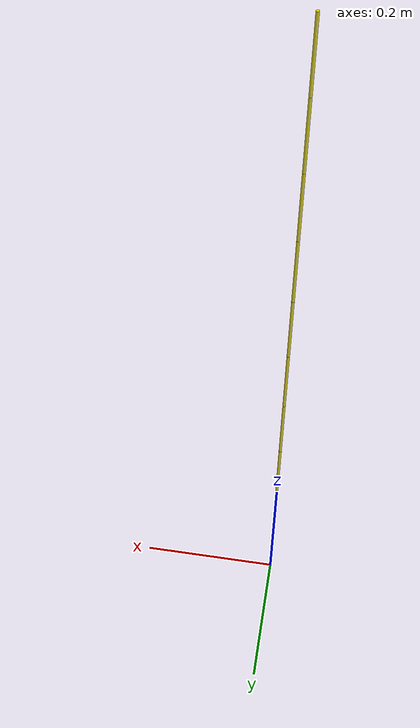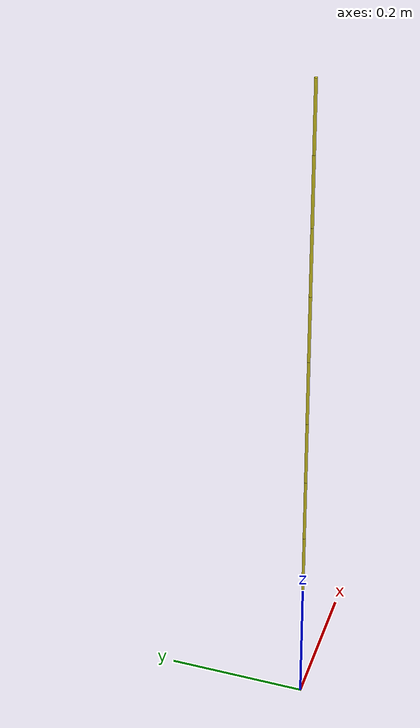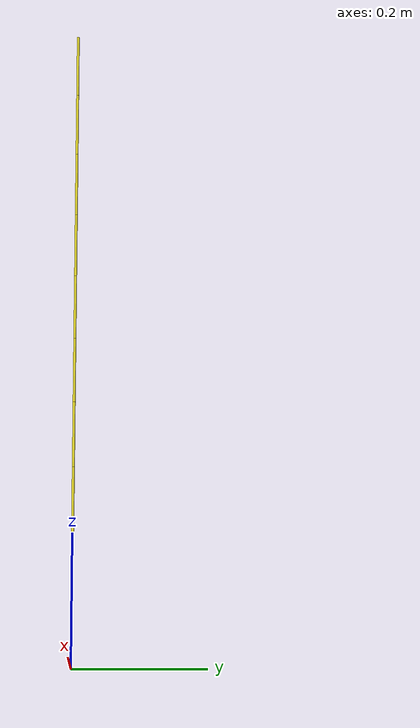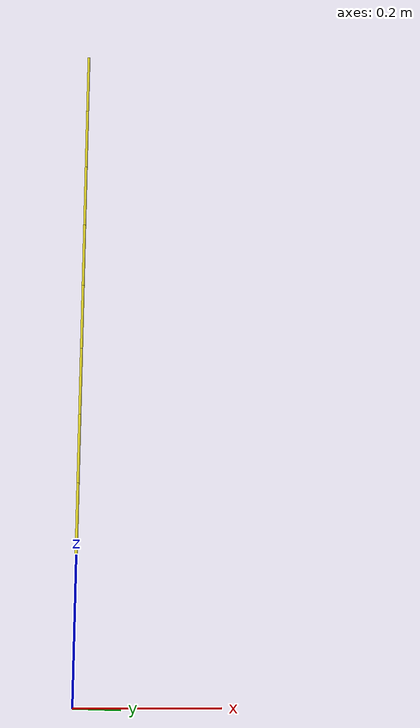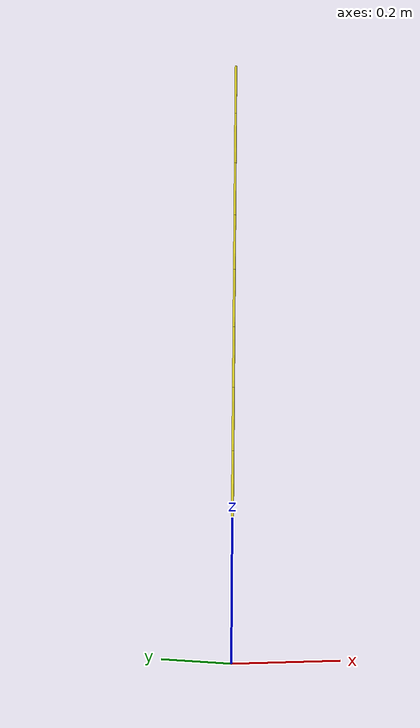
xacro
<?xml version="1.0"?>
<robot name="flexible_cable"
    xmlns:xacro="http://www.ros.org/wiki/xacro">

    <xacro:property name="N" value="10"/>
    <xacro:property name="length" value="1" />
    <xacro:property name="mass" value="0.01" />
    <xacro:property name="seg_length" value="${length/N}" />
    <xacro:property name="seg_mass" value="${mass/N}" />
    <xacro:property name="cable_radius" value="0.002" />
    <xacro:property name="color" value="Yellow"/>

    <!-- MACRO: dummy link to create 3D rotation (in Euler Angles) -->
    <xacro:macro name="dummy_link" params="name">
        <link name="${name}">
            <gravity>0</gravity>
            <inertial>
                <origin rpy="0 0 0" xyz="0 0 0"/>
                <mass value="0.00001"/>
                <inertia ixx="0.000000001" ixy="0" ixz="0" iyy="0.000000001" iyz="0" izz="0.000000001"/>
            </inertial>
            <visual>
                <geometry>
                    <sphere radius="0.00001"/>
                </geometry>
            </visual>
        </link>
        <gazebo reference="${name}">
            <material>Gazebo/Black</material>
        </gazebo>
    </xacro:macro>
    <!-- MACRO: create a rotational joint ( TODO: debug this joint) -->
    <xacro:macro name="rotational_joint" params="parent child jx jy jz">
        <xacro:dummy_link name="${parent}_${child}_dummylink1"/>
        <xacro:dummy_link name="${parent}_${child}_dummylink2"/>
        <joint name="${parent}_${child}_roll" type="continuous">
            <parent link="${parent}"/>
            <child link="${parent}_${child}_dummylink1"/>
            <axis xyz="1 0 0"/>
            <joint_properties damping="0.0" friction="0.0" />
            <origin xyz="${jx} ${jy} ${jz}"/>
        </joint>
        <joint name="${parent}_${child}_pitch" type="continuous">
            <parent link="${parent}_${child}_dummylink1"/>
            <child link="${parent}_${child}_dummylink2"/>
            <axis xyz="0 1 0"/>
            <joint_properties damping="0.0" friction="0.0" />
            <origin xyz="0 0 0"/>
        </joint>
        <joint name="${parent}_${child}_yaw" type="continuous">
            <parent link="${parent}_${child}_dummylink2"/>
            <child link="${child}"/>
            <axis xyz="0 0 1"/>
            <joint_properties damping="0.0" friction="0.0" />
            <origin xyz="0 0 0"/>
        </joint>
    </xacro:macro>
    <xacro:macro name="cable_segment" params="index">
        <link name="segment${index}">
            <collision>
                <origin xyz="0 0 ${seg_length/2}" rpy="0 0 0"/>
                <geometry>
                    <cylinder length="${seg_length}" radius="${cable_radius}"/>
                </geometry>
            </collision>
            <visual>
                <origin xyz="0 0 ${seg_length/2}" rpy="0 0 0"/>
                <geometry>
                    <cylinder length="${seg_length}" radius="${cable_radius}"/>
                </geometry>
            </visual>
            <inertial>
                <origin xyz="0 0 ${seg_length/2}" rpy="0 0 0"/>
                <mass value="${seg_mass}"/>
                <!-- TODO fix the inertia -->
                <inertia ixx="0.0001" ixy="0.0" ixz="0.0" iyy="0.0001" iyz="0.0" izz="0.0004"/>
            </inertial>
        </link>
        <gazebo reference="segment${index}">
            <material>Gazebo/${color}</material>
            <kp>10.0</kp>
            <kd>1</kd>
            <mu1>1.0</mu1>
            <mu2>1.0</mu2>
            <maxVel>0.0</maxVel>
            <minDepth>0.001</minDepth>
            <collision>
                <max_contacts>10</max_contacts>
                <surface>
                    <bounce>
                        <restitution_coefficient>0.0</restitution_coefficient>
                        <threshold>0.01</threshold>
                    </bounce>
                </surface>
            </collision>
        </gazebo>
    </xacro:macro>

    <xacro:cable_segment index="1"/>
    <xacro:cable_segment index="2"/>
    <xacro:rotational_joint parent="segment1" child="segment2" jx="0" jy="0" jz="${seg_length}"/>
    <xacro:cable_segment index="3"/>
    <xacro:rotational_joint parent="segment2" child="segment3" jx="0" jy="0" jz="${seg_length}"/>
    <xacro:cable_segment index="4"/>
    <xacro:rotational_joint parent="segment3" child="segment4" jx="0" jy="0" jz="${seg_length}"/>
    <xacro:cable_segment index="5"/>
    <xacro:rotational_joint parent="segment4" child="segment5" jx="0" jy="0" jz="${seg_length}"/>
    <xacro:cable_segment index="6"/>
    <xacro:rotational_joint parent="segment5" child="segment6" jx="0" jy="0" jz="${seg_length}"/>
    <xacro:cable_segment index="7"/>
    <xacro:rotational_joint parent="segment6" child="segment7" jx="0" jy="0" jz="${seg_length}"/>
    <xacro:cable_segment index="8"/>
    <xacro:rotational_joint parent="segment7" child="segment8" jx="0" jy="0" jz="${seg_length}"/>
    <xacro:cable_segment index="9"/>
    <xacro:rotational_joint parent="segment8" child="segment9" jx="0" jy="0" jz="${seg_length}"/>
    <xacro:cable_segment index="10"/>
    <xacro:rotational_joint parent="segment9" child="segment10" jx="0" jy="0" jz="${seg_length}"/>

</robot>
